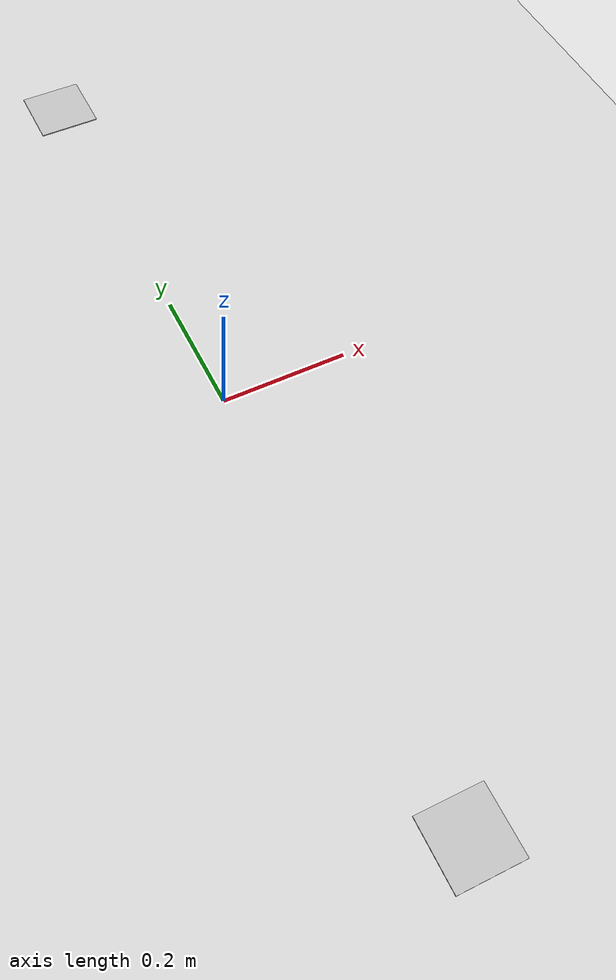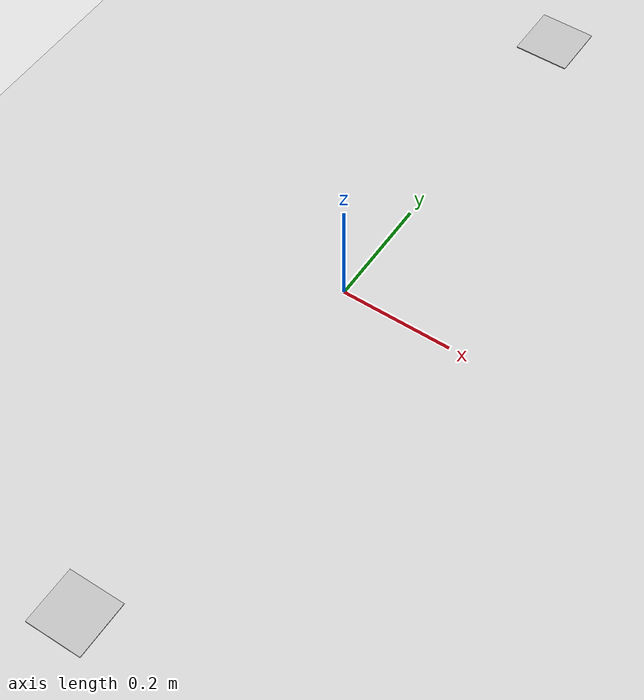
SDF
<sdf version="1.7">
 <world name="default">
  <light name="sun" type="directional">
   <pose>0 0 10 0 -0 0</pose>
   <diffuse>0.8 0.8 0.8 1</diffuse>
   <specular>0.2 0.2 0.2 1</specular>
   <attenuation>
    <range>1000</range>
    <constant>0.9</constant>
    <linear>0.01</linear>
    <quadratic>0.001</quadratic>
   </attenuation>
   <direction>-0.5 0.1 -0.9</direction>
   <spot><inner_angle>0</inner_angle><outer_angle>0</outer_angle><falloff>0</falloff></spot>
  </light>
  <model name="ground_plane">
   <static>1</static>
   <link name="link">
    <collision name="collision">
     <geometry><plane><normal>0 0 1</normal><size>100 100</size></plane></geometry>
     <surface>
      <contact><collide_bitmask>65535</collide_bitmask></contact>
      <friction><ode><mu>100</mu><mu2>50</mu2></ode></friction>
     </surface>
    </collision>
    <visual name="visual">
     <cast_shadows>0</cast_shadows>
     <geometry><plane><normal>0 0 1</normal><size>100 100</size></plane></geometry>
     <material>
      <script><uri>file://media/materials/scripts/gazebo.material</uri><name>Gazebo/Grey</name></script>
     </material>
    </visual>
   </link>
  </model>
  <gravity>0 0 -9.8</gravity>
  <magnetic_field>6e-06 2.3e-05 -4.2e-05</magnetic_field>
  <atmosphere type="adiabatic"/>
  <physics type="ode">
   <max_step_size>0.001</max_step_size>
   <real_time_factor>1</real_time_factor>
   <real_time_update_rate>1000</real_time_update_rate>
  </physics>
  <scene><ambient>0.4 0.4 0.4 1</ambient><background>0.7 0.7 0.7 1</background><shadows>1</shadows></scene>
  <spherical_coordinates>
   <surface_model>EARTH_WGS84</surface_model>
   <latitude_deg>0</latitude_deg>
   <longitude_deg>0</longitude_deg>
   <elevation>0</elevation>
   <heading_deg>0</heading_deg>
  </spherical_coordinates>
  <model name="QR01">
   <static>1</static>
   <link name="link">
    <visual name="visual">
     <geometry><mesh><uri>model://qr01/meshes/QR01.dae</uri><scale>0.2 0.2 0.2</scale></mesh></geometry>
    </visual>
   </link>
   <pose>-0.05 0.69 0 3e-06 -1.57079 3.14159</pose>
  </model>
  <model name="QR02">
   <static>1</static>
   <link name="link">
    <visual name="visual">
     <geometry><mesh><uri>model://qr02/meshes/QR02.dae</uri><scale>0.2 0.2 0.2</scale></mesh></geometry>
    </visual>
   </link>
   <pose>-0.05 -0.69 0 -3e-06 -1.57079 3.14159</pose>
  </model>
 </world>
</sdf>
